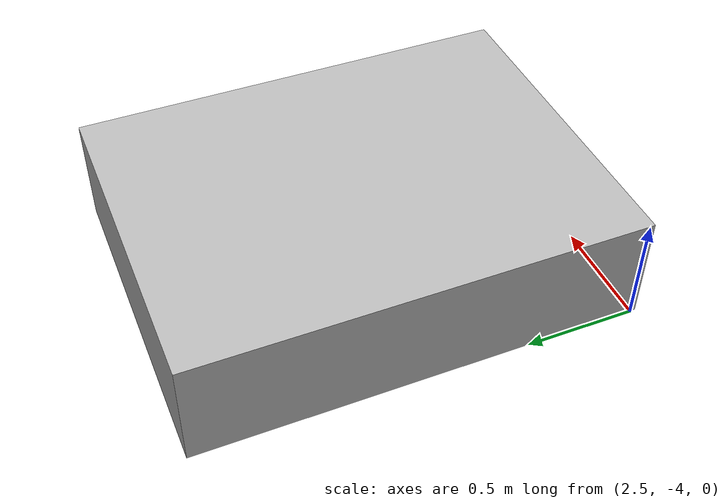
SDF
<?xml version="1.0"?>
<sdf version="1.6">
  <model name="new_mainBase">
    <static>true</static>
    <link name="mainBase_link">
      <visual name="visual_mainBase">
        <cast_shadows>true</cast_shadows>
        <geometry>
          <mesh>
            <uri>model://cbrMainBase/meshes/baseMain.dae</uri>
          </mesh>
        </geometry>
        <material>
          <script>
            <uri>model://cbrMainBase/materials/scripts</uri>
            <uri>model://cbrMainBase/materials/textures</uri>
            <name>mainBase/color</name>
          </script>
        </material>
      </visual>
      <collision name="collision_mainBase">
        <geometry>
          <mesh>
            <uri>model://cbrMainBase/meshes/baseMain.dae</uri>
          </mesh>
        </geometry>
      </collision>
    </link>
  </model>
</sdf>
